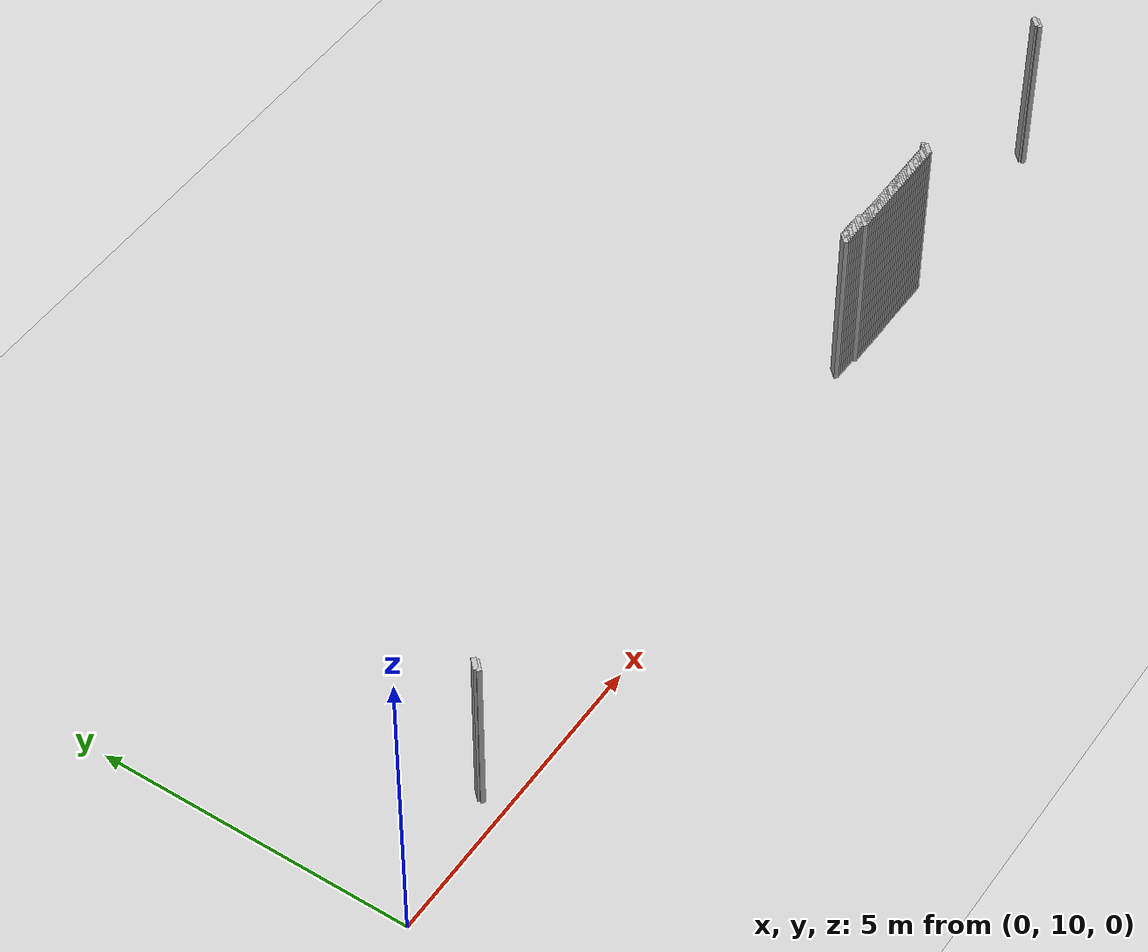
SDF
<sdf version="1.5">
 <world name="default">
  <include><uri>model://ground_plane</uri></include>
  <include><uri>model://sun</uri></include>
  <model name="grey_wall_1586">
   <static>1</static>
   <link name="link">
    <pose>11.5 10.5  1.4 0 0 -0.7853981633974483</pose>
    <collision name="collision">
     <geometry><box><size>0.07071067811865576 .2  2.8</size></box></geometry>
    </collision>
    <visual name="visual">
     <cast_shadows>0</cast_shadows>
     <geometry><box><size>0.07071067811865576 .2  2.8</size></box></geometry>
    </visual>
   </link>
  </model>
  <model name="grey_wall_1587">
   <static>1</static>
   <link name="link">
    <pose>11.55 10.5  1.4 0 0 -0.7853981633974483</pose>
    <collision name="collision">
     <geometry><box><size>0.07071067811865576 .2  2.8</size></box></geometry>
    </collision>
    <visual name="visual">
     <cast_shadows>0</cast_shadows>
     <geometry><box><size>0.07071067811865576 .2  2.8</size></box></geometry>
    </visual>
   </link>
  </model>
  <model name="grey_wall_1588">
   <static>1</static>
   <link name="link">
    <pose>11.600000000000001 10.5  1.4 0 0 -0.7853981633974483</pose>
    <collision name="collision">
     <geometry><box><size>0.07071067811865576 .2  2.8</size></box></geometry>
    </collision>
    <visual name="visual">
     <cast_shadows>0</cast_shadows>
     <geometry><box><size>0.07071067811865576 .2  2.8</size></box></geometry>
    </visual>
   </link>
  </model>
  <model name="grey_wall_1589">
   <static>1</static>
   <link name="link">
    <pose>11.65 10.5  1.4 0 0 -0.7853981633974483</pose>
    <collision name="collision">
     <geometry><box><size>0.07071067811865576 .2  2.8</size></box></geometry>
    </collision>
    <visual name="visual">
     <cast_shadows>0</cast_shadows>
     <geometry><box><size>0.07071067811865576 .2  2.8</size></box></geometry>
    </visual>
   </link>
  </model>
  <model name="grey_wall_1590">
   <static>1</static>
   <link name="link">
    <pose>11.700000000000001 10.5  1.4 0 0 -0.7853981633974483</pose>
    <collision name="collision">
     <geometry><box><size>0.07071067811865576 .2  2.8</size></box></geometry>
    </collision>
    <visual name="visual">
     <cast_shadows>0</cast_shadows>
     <geometry><box><size>0.07071067811865576 .2  2.8</size></box></geometry>
    </visual>
   </link>
  </model>
  <model name="grey_wall_1591">
   <static>1</static>
   <link name="link">
    <pose>11.75 10.5  1.4 0 0 -0.7853981633974483</pose>
    <collision name="collision">
     <geometry><box><size>0.07071067811865576 .2  2.8</size></box></geometry>
    </collision>
    <visual name="visual">
     <cast_shadows>0</cast_shadows>
     <geometry><box><size>0.07071067811865576 .2  2.8</size></box></geometry>
    </visual>
   </link>
  </model>
  <model name="grey_wall_1592">
   <static>1</static>
   <link name="link">
    <pose>11.8 10.5  1.4 0 0 -0.7853981633974483</pose>
    <collision name="collision">
     <geometry><box><size>0.07071067811865576 .2  2.8</size></box></geometry>
    </collision>
    <visual name="visual">
     <cast_shadows>0</cast_shadows>
     <geometry><box><size>0.07071067811865576 .2  2.8</size></box></geometry>
    </visual>
   </link>
  </model>
  <model name="grey_wall_1593">
   <static>1</static>
   <link name="link">
    <pose>11.850000000000001 10.5  1.4 0 0 -0.7853981633974483</pose>
    <collision name="collision">
     <geometry><box><size>0.07071067811865576 .2  2.8</size></box></geometry>
    </collision>
    <visual name="visual">
     <cast_shadows>0</cast_shadows>
     <geometry><box><size>0.07071067811865576 .2  2.8</size></box></geometry>
    </visual>
   </link>
  </model>
  <model name="grey_wall_1594">
   <static>1</static>
   <link name="link">
    <pose>11.9 10.5  1.4 0 0 -0.7853981633974483</pose>
    <collision name="collision">
     <geometry><box><size>0.07071067811865576 .2  2.8</size></box></geometry>
    </collision>
    <visual name="visual">
     <cast_shadows>0</cast_shadows>
     <geometry><box><size>0.07071067811865576 .2  2.8</size></box></geometry>
    </visual>
   </link>
  </model>
  <model name="grey_wall_1595">
   <static>1</static>
   <link name="link">
    <pose>11.950000000000001 10.5  1.4 0 0 -0.7853981633974483</pose>
    <collision name="collision">
     <geometry><box><size>0.07071067811865576 .2  2.8</size></box></geometry>
    </collision>
    <visual name="visual">
     <cast_shadows>0</cast_shadows>
     <geometry><box><size>0.07071067811865576 .2  2.8</size></box></geometry>
    </visual>
   </link>
  </model>
  <model name="grey_wall_1596">
   <static>1</static>
   <link name="link">
    <pose>13.75 10.5  1.4 0 0 -0.7853981633974483</pose>
    <collision name="collision">
     <geometry><box><size>0.07071067811865576 .2  2.8</size></box></geometry>
    </collision>
    <visual name="visual">
     <cast_shadows>0</cast_shadows>
     <geometry><box><size>0.07071067811865576 .2  2.8</size></box></geometry>
    </visual>
   </link>
  </model>
  <model name="grey_wall_1597">
   <static>1</static>
   <link name="link">
    <pose>17.05 10.5  1.4 0 0 -0.7853981633974838</pose>
    <collision name="collision">
     <geometry><box><size>0.07071067811865325 .2  2.8</size></box></geometry>
    </collision>
    <visual name="visual">
     <cast_shadows>0</cast_shadows>
     <geometry><box><size>0.07071067811865325 .2  2.8</size></box></geometry>
    </visual>
   </link>
  </model>
  <model name="grey_wall_1598">
   <static>1</static>
   <link name="link">
    <pose>2.25 10.450000000000001  1.4 0 0 -0.7853981633974572</pose>
    <collision name="collision">
     <geometry><box><size>0.07071067811865513 .2  2.8</size></box></geometry>
    </collision>
    <visual name="visual">
     <cast_shadows>0</cast_shadows>
     <geometry><box><size>0.07071067811865513 .2  2.8</size></box></geometry>
    </visual>
   </link>
  </model>
  <model name="grey_wall_1599">
   <static>1</static>
   <link name="link">
    <pose>11.950000000000001 10.450000000000001  1.4 0 0 -0.7853981633974483</pose>
    <collision name="collision">
     <geometry><box><size>0.07071067811865576 .2  2.8</size></box></geometry>
    </collision>
    <visual name="visual">
     <cast_shadows>0</cast_shadows>
     <geometry><box><size>0.07071067811865576 .2  2.8</size></box></geometry>
    </visual>
   </link>
  </model>
  <model name="grey_wall_1600">
   <static>1</static>
   <link name="link">
    <pose>12.0 10.450000000000001  1.4 0 0 -0.7853981633974483</pose>
    <collision name="collision">
     <geometry><box><size>0.07071067811865576 .2  2.8</size></box></geometry>
    </collision>
    <visual name="visual">
     <cast_shadows>0</cast_shadows>
     <geometry><box><size>0.07071067811865576 .2  2.8</size></box></geometry>
    </visual>
   </link>
  </model>
  <model name="grey_wall_1601">
   <static>1</static>
   <link name="link">
    <pose>12.05 10.450000000000001  1.4 0 0 -0.7853981633974483</pose>
    <collision name="collision">
     <geometry><box><size>0.07071067811865576 .2  2.8</size></box></geometry>
    </collision>
    <visual name="visual">
     <cast_shadows>0</cast_shadows>
     <geometry><box><size>0.07071067811865576 .2  2.8</size></box></geometry>
    </visual>
   </link>
  </model>
  <model name="grey_wall_1602">
   <static>1</static>
   <link name="link">
    <pose>12.100000000000001 10.450000000000001  1.4 0 0 -0.7853981633974483</pose>
    <collision name="collision">
     <geometry><box><size>0.07071067811865576 .2  2.8</size></box></geometry>
    </collision>
    <visual name="visual">
     <cast_shadows>0</cast_shadows>
     <geometry><box><size>0.07071067811865576 .2  2.8</size></box></geometry>
    </visual>
   </link>
  </model>
  <model name="grey_wall_1603">
   <static>1</static>
   <link name="link">
    <pose>12.15 10.450000000000001  1.4 0 0 -0.7853981633974483</pose>
    <collision name="collision">
     <geometry><box><size>0.07071067811865576 .2  2.8</size></box></geometry>
    </collision>
    <visual name="visual">
     <cast_shadows>0</cast_shadows>
     <geometry><box><size>0.07071067811865576 .2  2.8</size></box></geometry>
    </visual>
   </link>
  </model>
  <model name="grey_wall_1604">
   <static>1</static>
   <link name="link">
    <pose>12.200000000000001 10.450000000000001  1.4 0 0 -0.7853981633974483</pose>
    <collision name="collision">
     <geometry><box><size>0.07071067811865576 .2  2.8</size></box></geometry>
    </collision>
    <visual name="visual">
     <cast_shadows>0</cast_shadows>
     <geometry><box><size>0.07071067811865576 .2  2.8</size></box></geometry>
    </visual>
   </link>
  </model>
  <model name="grey_wall_1605">
   <static>1</static>
   <link name="link">
    <pose>12.25 10.450000000000001  1.4 0 0 -0.7853981633974483</pose>
    <collision name="collision">
     <geometry><box><size>0.07071067811865576 .2  2.8</size></box></geometry>
    </collision>
    <visual name="visual">
     <cast_shadows>0</cast_shadows>
     <geometry><box><size>0.07071067811865576 .2  2.8</size></box></geometry>
    </visual>
   </link>
  </model>
  <model name="grey_wall_1606">
   <static>1</static>
   <link name="link">
    <pose>12.3 10.450000000000001  1.4 0 0 -0.7853981633974483</pose>
    <collision name="collision">
     <geometry><box><size>0.07071067811865576 .2  2.8</size></box></geometry>
    </collision>
    <visual name="visual">
     <cast_shadows>0</cast_shadows>
     <geometry><box><size>0.07071067811865576 .2  2.8</size></box></geometry>
    </visual>
   </link>
  </model>
  <model name="grey_wall_1607">
   <static>1</static>
   <link name="link">
    <pose>12.350000000000001 10.450000000000001  1.4 0 0 -0.7853981633974483</pose>
    <collision name="collision">
     <geometry><box><size>0.07071067811865576 .2  2.8</size></box></geometry>
    </collision>
    <visual name="visual">
     <cast_shadows>0</cast_shadows>
     <geometry><box><size>0.07071067811865576 .2  2.8</size></box></geometry>
    </visual>
   </link>
  </model>
  <model name="grey_wall_1608">
   <static>1</static>
   <link name="link">
    <pose>12.4 10.450000000000001  1.4 0 0 -0.7853981633974483</pose>
    <collision name="collision">
     <geometry><box><size>0.07071067811865576 .2  2.8</size></box></geometry>
    </collision>
    <visual name="visual">
     <cast_shadows>0</cast_shadows>
     <geometry><box><size>0.07071067811865576 .2  2.8</size></box></geometry>
    </visual>
   </link>
  </model>
  <model name="grey_wall_1609">
   <static>1</static>
   <link name="link">
    <pose>12.450000000000001 10.450000000000001  1.4 0 0 -0.7853981633974483</pose>
    <collision name="collision">
     <geometry><box><size>0.07071067811865576 .2  2.8</size></box></geometry>
    </collision>
    <visual name="visual">
     <cast_shadows>0</cast_shadows>
     <geometry><box><size>0.07071067811865576 .2  2.8</size></box></geometry>
    </visual>
   </link>
  </model>
  <model name="grey_wall_1610">
   <static>1</static>
   <link name="link">
    <pose>12.5 10.450000000000001  1.4 0 0 -0.7853981633974483</pose>
    <collision name="collision">
     <geometry><box><size>0.07071067811865576 .2  2.8</size></box></geometry>
    </collision>
    <visual name="visual">
     <cast_shadows>0</cast_shadows>
     <geometry><box><size>0.07071067811865576 .2  2.8</size></box></geometry>
    </visual>
   </link>
  </model>
  <model name="grey_wall_1611">
   <static>1</static>
   <link name="link">
    <pose>12.55 10.450000000000001  1.4 0 0 -0.7853981633974483</pose>
    <collision name="collision">
     <geometry><box><size>0.07071067811865576 .2  2.8</size></box></geometry>
    </collision>
    <visual name="visual">
     <cast_shadows>0</cast_shadows>
     <geometry><box><size>0.07071067811865576 .2  2.8</size></box></geometry>
    </visual>
   </link>
  </model>
  <model name="grey_wall_1612">
   <static>1</static>
   <link name="link">
    <pose>12.600000000000001 10.450000000000001  1.4 0 0 -0.7853981633974483</pose>
    <collision name="collision">
     <geometry><box><size>0.07071067811865576 .2  2.8</size></box></geometry>
    </collision>
    <visual name="visual">
     <cast_shadows>0</cast_shadows>
     <geometry><box><size>0.07071067811865576 .2  2.8</size></box></geometry>
    </visual>
   </link>
  </model>
  <model name="grey_wall_1613">
   <static>1</static>
   <link name="link">
    <pose>12.65 10.450000000000001  1.4 0 0 -0.7853981633974483</pose>
    <collision name="collision">
     <geometry><box><size>0.07071067811865576 .2  2.8</size></box></geometry>
    </collision>
    <visual name="visual">
     <cast_shadows>0</cast_shadows>
     <geometry><box><size>0.07071067811865576 .2  2.8</size></box></geometry>
    </visual>
   </link>
  </model>
  <model name="grey_wall_1614">
   <static>1</static>
   <link name="link">
    <pose>12.700000000000001 10.450000000000001  1.4 0 0 -0.7853981633974483</pose>
    <collision name="collision">
     <geometry><box><size>0.07071067811865576 .2  2.8</size></box></geometry>
    </collision>
    <visual name="visual">
     <cast_shadows>0</cast_shadows>
     <geometry><box><size>0.07071067811865576 .2  2.8</size></box></geometry>
    </visual>
   </link>
  </model>
  <model name="grey_wall_1615">
   <static>1</static>
   <link name="link">
    <pose>12.75 10.450000000000001  1.4 0 0 -0.7853981633974483</pose>
    <collision name="collision">
     <geometry><box><size>0.07071067811865576 .2  2.8</size></box></geometry>
    </collision>
    <visual name="visual">
     <cast_shadows>0</cast_shadows>
     <geometry><box><size>0.07071067811865576 .2  2.8</size></box></geometry>
    </visual>
   </link>
  </model>
  <model name="grey_wall_1616">
   <static>1</static>
   <link name="link">
    <pose>12.8 10.450000000000001  1.4 0 0 -0.7853981633974483</pose>
    <collision name="collision">
     <geometry><box><size>0.07071067811865576 .2  2.8</size></box></geometry>
    </collision>
    <visual name="visual">
     <cast_shadows>0</cast_shadows>
     <geometry><box><size>0.07071067811865576 .2  2.8</size></box></geometry>
    </visual>
   </link>
  </model>
  <model name="grey_wall_1617">
   <static>1</static>
   <link name="link">
    <pose>12.850000000000001 10.450000000000001  1.4 0 0 -0.7853981633974483</pose>
    <collision name="collision">
     <geometry><box><size>0.07071067811865576 .2  2.8</size></box></geometry>
    </collision>
    <visual name="visual">
     <cast_shadows>0</cast_shadows>
     <geometry><box><size>0.07071067811865576 .2  2.8</size></box></geometry>
    </visual>
   </link>
  </model>
  <model name="grey_wall_1618">
   <static>1</static>
   <link name="link">
    <pose>12.9 10.450000000000001  1.4 0 0 -0.7853981633974483</pose>
    <collision name="collision">
     <geometry><box><size>0.07071067811865576 .2  2.8</size></box></geometry>
    </collision>
    <visual name="visual">
     <cast_shadows>0</cast_shadows>
     <geometry><box><size>0.07071067811865576 .2  2.8</size></box></geometry>
    </visual>
   </link>
  </model>
  <model name="grey_wall_1619">
   <static>1</static>
   <link name="link">
    <pose>12.950000000000001 10.450000000000001  1.4 0 0 -0.7853981633974483</pose>
    <collision name="collision">
     <geometry><box><size>0.07071067811865576 .2  2.8</size></box></geometry>
    </collision>
    <visual name="visual">
     <cast_shadows>0</cast_shadows>
     <geometry><box><size>0.07071067811865576 .2  2.8</size></box></geometry>
    </visual>
   </link>
  </model>
  <model name="grey_wall_1620">
   <static>1</static>
   <link name="link">
    <pose>13.0 10.450000000000001  1.4 0 0 -0.7853981633974483</pose>
    <collision name="collision">
     <geometry><box><size>0.07071067811865576 .2  2.8</size></box></geometry>
    </collision>
    <visual name="visual">
     <cast_shadows>0</cast_shadows>
     <geometry><box><size>0.07071067811865576 .2  2.8</size></box></geometry>
    </visual>
   </link>
  </model>
  <model name="grey_wall_1621">
   <static>1</static>
   <link name="link">
    <pose>13.05 10.450000000000001  1.4 0 0 -0.7853981633974483</pose>
    <collision name="collision">
     <geometry><box><size>0.07071067811865576 .2  2.8</size></box></geometry>
    </collision>
    <visual name="visual">
     <cast_shadows>0</cast_shadows>
     <geometry><box><size>0.07071067811865576 .2  2.8</size></box></geometry>
    </visual>
   </link>
  </model>
  <model name="grey_wall_1622">
   <static>1</static>
   <link name="link">
    <pose>13.100000000000001 10.450000000000001  1.4 0 0 -0.7853981633974483</pose>
    <collision name="collision">
     <geometry><box><size>0.07071067811865576 .2  2.8</size></box></geometry>
    </collision>
    <visual name="visual">
     <cast_shadows>0</cast_shadows>
     <geometry><box><size>0.07071067811865576 .2  2.8</size></box></geometry>
    </visual>
   </link>
  </model>
  <model name="grey_wall_1623">
   <static>1</static>
   <link name="link">
    <pose>13.15 10.450000000000001  1.4 0 0 -0.7853981633974483</pose>
    <collision name="collision">
     <geometry><box><size>0.07071067811865576 .2  2.8</size></box></geometry>
    </collision>
    <visual name="visual">
     <cast_shadows>0</cast_shadows>
     <geometry><box><size>0.07071067811865576 .2  2.8</size></box></geometry>
    </visual>
   </link>
  </model>
  <model name="grey_wall_1624">
   <static>1</static>
   <link name="link">
    <pose>13.200000000000001 10.450000000000001  1.4 0 0 -0.7853981633974483</pose>
    <collision name="collision">
     <geometry><box><size>0.07071067811865576 .2  2.8</size></box></geometry>
    </collision>
    <visual name="visual">
     <cast_shadows>0</cast_shadows>
     <geometry><box><size>0.07071067811865576 .2  2.8</size></box></geometry>
    </visual>
   </link>
  </model>
  <model name="grey_wall_1625">
   <static>1</static>
   <link name="link">
    <pose>13.25 10.450000000000001  1.4 0 0 -0.7853981633974483</pose>
    <collision name="collision">
     <geometry><box><size>0.07071067811865576 .2  2.8</size></box></geometry>
    </collision>
    <visual name="visual">
     <cast_shadows>0</cast_shadows>
     <geometry><box><size>0.07071067811865576 .2  2.8</size></box></geometry>
    </visual>
   </link>
  </model>
  <model name="grey_wall_1626">
   <static>1</static>
   <link name="link">
    <pose>13.3 10.450000000000001  1.4 0 0 -0.7853981633974483</pose>
    <collision name="collision">
     <geometry><box><size>0.07071067811865576 .2  2.8</size></box></geometry>
    </collision>
    <visual name="visual">
     <cast_shadows>0</cast_shadows>
     <geometry><box><size>0.07071067811865576 .2  2.8</size></box></geometry>
    </visual>
   </link>
  </model>
  <model name="grey_wall_1627">
   <static>1</static>
   <link name="link">
    <pose>13.350000000000001 10.450000000000001  1.4 0 0 -0.7853981633974483</pose>
    <collision name="collision">
     <geometry><box><size>0.07071067811865576 .2  2.8</size></box></geometry>
    </collision>
    <visual name="visual">
     <cast_shadows>0</cast_shadows>
     <geometry><box><size>0.07071067811865576 .2  2.8</size></box></geometry>
    </visual>
   </link>
  </model>
  <model name="grey_wall_1628">
   <static>1</static>
   <link name="link">
    <pose>13.4 10.450000000000001  1.4 0 0 -0.7853981633974483</pose>
    <collision name="collision">
     <geometry><box><size>0.07071067811865576 .2  2.8</size></box></geometry>
    </collision>
    <visual name="visual">
     <cast_shadows>0</cast_shadows>
     <geometry><box><size>0.07071067811865576 .2  2.8</size></box></geometry>
    </visual>
   </link>
  </model>
  <model name="grey_wall_1629">
   <static>1</static>
   <link name="link">
    <pose>13.450000000000001 10.450000000000001  1.4 0 0 -0.7853981633974483</pose>
    <collision name="collision">
     <geometry><box><size>0.07071067811865576 .2  2.8</size></box></geometry>
    </collision>
    <visual name="visual">
     <cast_shadows>0</cast_shadows>
     <geometry><box><size>0.07071067811865576 .2  2.8</size></box></geometry>
    </visual>
   </link>
  </model>
  <model name="grey_wall_1630">
   <static>1</static>
   <link name="link">
    <pose>13.5 10.450000000000001  1.4 0 0 -0.7853981633974483</pose>
    <collision name="collision">
     <geometry><box><size>0.07071067811865576 .2  2.8</size></box></geometry>
    </collision>
    <visual name="visual">
     <cast_shadows>0</cast_shadows>
     <geometry><box><size>0.07071067811865576 .2  2.8</size></box></geometry>
    </visual>
   </link>
  </model>
  <model name="grey_wall_1631">
   <static>1</static>
   <link name="link">
    <pose>13.55 10.450000000000001  1.4 0 0 -0.7853981633974483</pose>
    <collision name="collision">
     <geometry><box><size>0.07071067811865576 .2  2.8</size></box></geometry>
    </collision>
    <visual name="visual">
     <cast_shadows>0</cast_shadows>
     <geometry><box><size>0.07071067811865576 .2  2.8</size></box></geometry>
    </visual>
   </link>
  </model>
  <model name="grey_wall_1632">
   <static>1</static>
   <link name="link">
    <pose>13.600000000000001 10.450000000000001  1.4 0 0 -0.7853981633974483</pose>
    <collision name="collision">
     <geometry><box><size>0.07071067811865576 .2  2.8</size></box></geometry>
    </collision>
    <visual name="visual">
     <cast_shadows>0</cast_shadows>
     <geometry><box><size>0.07071067811865576 .2  2.8</size></box></geometry>
    </visual>
   </link>
  </model>
  <model name="grey_wall_1633">
   <static>1</static>
   <link name="link">
    <pose>13.65 10.450000000000001  1.4 0 0 -0.7853981633974483</pose>
    <collision name="collision">
     <geometry><box><size>0.07071067811865576 .2  2.8</size></box></geometry>
    </collision>
    <visual name="visual">
     <cast_shadows>0</cast_shadows>
     <geometry><box><size>0.07071067811865576 .2  2.8</size></box></geometry>
    </visual>
   </link>
  </model>
  <model name="grey_wall_1634">
   <static>1</static>
   <link name="link">
    <pose>13.700000000000001 10.450000000000001  1.4 0 0 -0.7853981633974483</pose>
    <collision name="collision">
     <geometry><box><size>0.07071067811865576 .2  2.8</size></box></geometry>
    </collision>
    <visual name="visual">
     <cast_shadows>0</cast_shadows>
     <geometry><box><size>0.07071067811865576 .2  2.8</size></box></geometry>
    </visual>
   </link>
  </model>
  <model name="grey_wall_1635">
   <static>1</static>
   <link name="link">
    <pose>13.75 10.450000000000001  1.4 0 0 -0.7853981633974483</pose>
    <collision name="collision">
     <geometry><box><size>0.07071067811865576 .2  2.8</size></box></geometry>
    </collision>
    <visual name="visual">
     <cast_shadows>0</cast_shadows>
     <geometry><box><size>0.07071067811865576 .2  2.8</size></box></geometry>
    </visual>
   </link>
  </model>
  <model name="grey_wall_1636">
   <static>1</static>
   <link name="link">
    <pose>17.05 10.450000000000001  1.4 0 0 -0.7853981633974838</pose>
    <collision name="collision">
     <geometry><box><size>0.07071067811865325 .2  2.8</size></box></geometry>
    </collision>
    <visual name="visual">
     <cast_shadows>0</cast_shadows>
     <geometry><box><size>0.07071067811865325 .2  2.8</size></box></geometry>
    </visual>
   </link>
  </model>
  <model name="grey_wall_1637">
   <static>1</static>
   <link name="link">
    <pose>2.25 10.4  1.4 0 0 -0.7853981633974572</pose>
    <collision name="collision">
     <geometry><box><size>0.07071067811865513 .2  2.8</size></box></geometry>
    </collision>
    <visual name="visual">
     <cast_shadows>0</cast_shadows>
     <geometry><box><size>0.07071067811865513 .2  2.8</size></box></geometry>
    </visual>
   </link>
  </model>
 </world>
</sdf>
